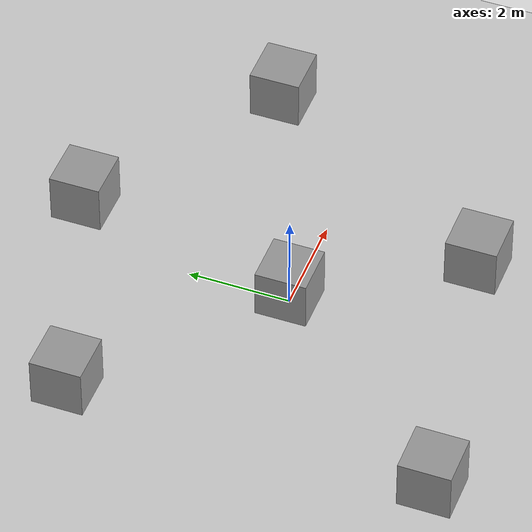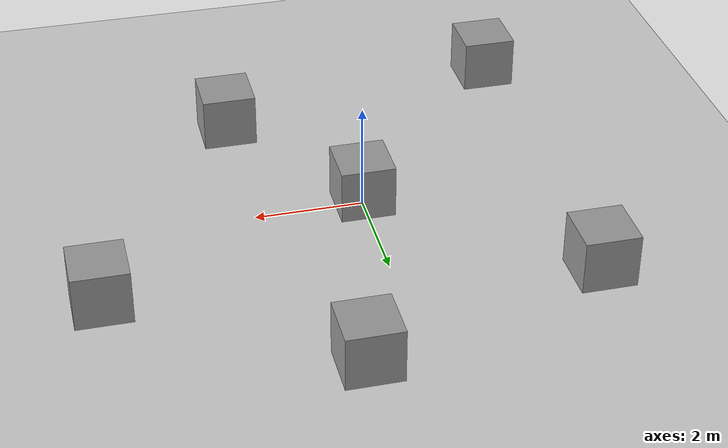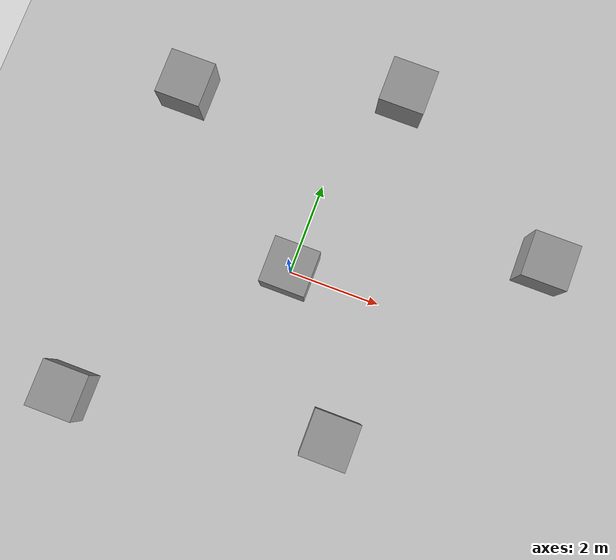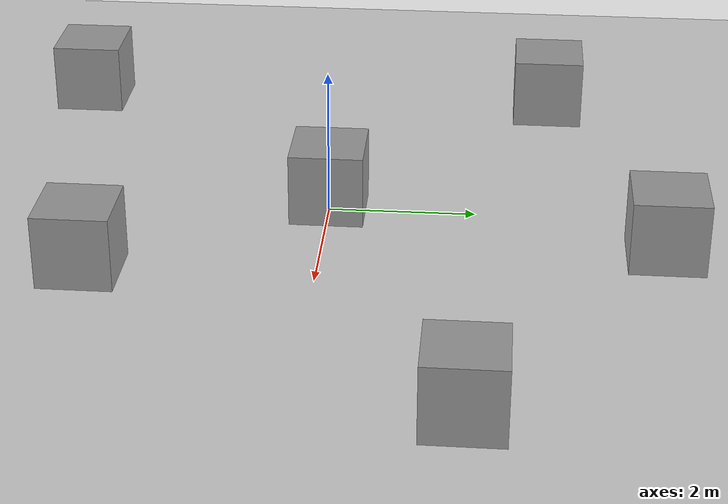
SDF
<sdf version='1.6'>
  <world name='default'>
    <light name='sun' type='directional'>
      <cast_shadows>1</cast_shadows>
      <pose frame=''>0 0 10 0 -0 0</pose>
      <diffuse>0.8 0.8 0.8 1</diffuse>
      <specular>0.2 0.2 0.2 1</specular>
      <attenuation>
        <range>1000</range>
        <constant>0.9</constant>
        <linear>0.01</linear>
        <quadratic>0.001</quadratic>
      </attenuation>
      <direction>-0.5 0.1 -0.9</direction>
    </light>
    <model name='ground_plane'>
      <static>1</static>
      <link name='link'>
        <collision name='collision'>
          <geometry>
            <plane>
              <normal>0 0 1</normal>
              <size>100 100</size>
            </plane>
          </geometry>
          <surface>
            <contact>
              <collide_bitmask>65535</collide_bitmask>
              <ode/>
            </contact>
            <friction>
              <ode>
                <mu>100</mu>
                <mu2>50</mu2>
              </ode>
              <torsional>
                <ode/>
              </torsional>
            </friction>
            <bounce/>
          </surface>
          <max_contacts>10</max_contacts>
        </collision>
        <visual name='visual'>
          <cast_shadows>0</cast_shadows>
          <geometry>
            <plane>
              <normal>0 0 1</normal>
              <size>100 100</size>
            </plane>
          </geometry>
          <material>
            <script>
              <uri>file://media/materials/scripts/gazebo.material</uri>
              <name>Gazebo/Grey</name>
            </script>
          </material>
        </visual>
        <self_collide>0</self_collide>
        <enable_wind>0</enable_wind>
        <kinematic>0</kinematic>
      </link>
    </model>
    <gravity>0 0 -9.8</gravity>
    <magnetic_field>6e-06 2.3e-05 -4.2e-05</magnetic_field>
    <atmosphere type='adiabatic'/>
    <physics name='default_physics' default='0' type='ode'>
      <max_step_size>0.001</max_step_size>
      <real_time_factor>1</real_time_factor>
      <real_time_update_rate>1000</real_time_update_rate>
    </physics>
    <scene>
      <ambient>0.4 0.4 0.4 1</ambient>
      <background>0.7 0.7 0.7 1</background>
      <shadows>1</shadows>
    </scene>
    <audio>
      <device>default</device>
    </audio>
    <wind/>
    <spherical_coordinates>
      <surface_model>EARTH_WGS84</surface_model>
      <latitude_deg>0</latitude_deg>
      <longitude_deg>0</longitude_deg>
      <elevation>0</elevation>
      <heading_deg>0</heading_deg>
    </spherical_coordinates>
    <model name='unit_box'>
      <pose frame=''>0.0 0.0 0.5 0 -0 0</pose>
      <link name='link'>
        <inertial>
          <mass>1</mass>
          <inertia>
            <ixx>0.166667</ixx>
            <ixy>0</ixy>
            <ixz>0</ixz>
            <iyy>0.166667</iyy>
            <iyz>0</iyz>
            <izz>0.166667</izz>
          </inertia>
        </inertial>
        <collision name='collision'>
          <geometry>
            <box>
              <size>1 1 1</size>
            </box>
          </geometry>
          <max_contacts>10</max_contacts>
          <surface>
            <contact>
              <ode/>
            </contact>
            <bounce/>
            <friction>
              <torsional>
                <ode/>
              </torsional>
              <ode/>
            </friction>
          </surface>
        </collision>
        <visual name='visual'>
          <geometry>
            <box>
              <size>1 1 1</size>
            </box>
          </geometry>
          <material>
            <script>
              <name>Gazebo/Grey</name>
              <uri>file://media/materials/scripts/gazebo.material</uri>
            </script>
          </material>
        </visual>
        <self_collide>0</self_collide>
        <enable_wind>0</enable_wind>
        <kinematic>0</kinematic>
      </link>
    </model>
    <model name='unit_box_0'>
      <pose frame=''>-3.5 -4.0 0.5 0 -0 0</pose>
      <link name='link'>
        <inertial>
          <mass>1</mass>
          <inertia>
            <ixx>0.166667</ixx>
            <ixy>0</ixy>
            <ixz>0</ixz>
            <iyy>0.166667</iyy>
            <iyz>0</iyz>
            <izz>0.166667</izz>
          </inertia>
        </inertial>
        <collision name='collision'>
          <geometry>
            <box>
              <size>1 1 1</size>
            </box>
          </geometry>
          <max_contacts>10</max_contacts>
          <surface>
            <contact>
              <ode/>
            </contact>
            <bounce/>
            <friction>
              <torsional>
                <ode/>
              </torsional>
              <ode/>
            </friction>
          </surface>
        </collision>
        <visual name='visual'>
          <geometry>
            <box>
              <size>1 1 1</size>
            </box>
          </geometry>
          <material>
            <script>
              <name>Gazebo/Grey</name>
              <uri>file://media/materials/scripts/gazebo.material</uri>
            </script>
          </material>
        </visual>
        <self_collide>0</self_collide>
        <enable_wind>0</enable_wind>
        <kinematic>0</kinematic>
      </link>
    </model>
    <model name='unit_box_1'>
      <pose frame=''>-3.5 3.0 0.5 0 -0 0</pose>
      <link name='link'>
        <inertial>
          <mass>1</mass>
          <inertia>
            <ixx>0.166667</ixx>
            <ixy>0</ixy>
            <ixz>0</ixz>
            <iyy>0.166667</iyy>
            <iyz>0</iyz>
            <izz>0.166667</izz>
          </inertia>
        </inertial>
        <collision name='collision'>
          <geometry>
            <box>
              <size>1 1 1</size>
            </box>
          </geometry>
          <max_contacts>10</max_contacts>
          <surface>
            <contact>
              <ode/>
            </contact>
            <bounce/>
            <friction>
              <torsional>
                <ode/>
              </torsional>
              <ode/>
            </friction>
          </surface>
        </collision>
        <visual name='visual'>
          <geometry>
            <box>
              <size>1 1 1</size>
            </box>
          </geometry>
          <material>
            <script>
              <name>Gazebo/Grey</name>
              <uri>file://media/materials/scripts/gazebo.material</uri>
            </script>
          </material>
        </visual>
        <self_collide>0</self_collide>
        <enable_wind>0</enable_wind>
        <kinematic>0</kinematic>
      </link>
    </model>
    <model name='unit_box_2'>
      <pose frame=''>2.0 -3.0 0.5 0 -0 0</pose>
      <link name='link'>
        <inertial>
          <mass>1</mass>
          <inertia>
            <ixx>0.166667</ixx>
            <ixy>0</ixy>
            <ixz>0</ixz>
            <iyy>0.166667</iyy>
            <iyz>0</iyz>
            <izz>0.166667</izz>
          </inertia>
        </inertial>
        <collision name='collision'>
          <geometry>
            <box>
              <size>1 1 1</size>
            </box>
          </geometry>
          <max_contacts>10</max_contacts>
          <surface>
            <contact>
              <ode/>
            </contact>
            <bounce/>
            <friction>
              <torsional>
                <ode/>
              </torsional>
              <ode/>
            </friction>
          </surface>
        </collision>
        <visual name='visual'>
          <geometry>
            <box>
              <size>1 1 1</size>
            </box>
          </geometry>
          <material>
            <script>
              <name>Gazebo/Grey</name>
              <uri>file://media/materials/scripts/gazebo.material</uri>
            </script>
          </material>
        </visual>
        <self_collide>0</self_collide>
        <enable_wind>0</enable_wind>
        <kinematic>0</kinematic>
      </link>
    </model>
    <model name='unit_box_3'>
      <pose frame=''>1.0 4.5 0.5 0 -0 0</pose>
      <link name='link'>
        <inertial>
          <mass>1</mass>
          <inertia>
            <ixx>0.166667</ixx>
            <ixy>0</ixy>
            <ixz>0</ixz>
            <iyy>0.166667</iyy>
            <iyz>0</iyz>
            <izz>0.166667</izz>
          </inertia>
        </inertial>
        <collision name='collision'>
          <geometry>
            <box>
              <size>1 1 1</size>
            </box>
          </geometry>
          <max_contacts>10</max_contacts>
          <surface>
            <contact>
              <ode/>
            </contact>
            <bounce/>
            <friction>
              <torsional>
                <ode/>
              </torsional>
              <ode/>
            </friction>
          </surface>
        </collision>
        <visual name='visual'>
          <geometry>
            <box>
              <size>1 1 1</size>
            </box>
          </geometry>
          <material>
            <script>
              <name>Gazebo/Grey</name>
              <uri>file://media/materials/scripts/gazebo.material</uri>
            </script>
          </material>
        </visual>
        <self_collide>0</self_collide>
        <enable_wind>0</enable_wind>
        <kinematic>0</kinematic>
      </link>
    </model>
    <model name='unit_box_4'>
      <pose frame=''>5.0 2.0 0.5 0 -0 0</pose>
      <link name='link'>
        <inertial>
          <mass>1</mass>
          <inertia>
            <ixx>0.166667</ixx>
            <ixy>0</ixy>
            <ixz>0</ixz>
            <iyy>0.166667</iyy>
            <iyz>0</iyz>
            <izz>0.166667</izz>
          </inertia>
        </inertial>
        <collision name='collision'>
          <geometry>
            <box>
              <size>1 1 1</size>
            </box>
          </geometry>
          <max_contacts>10</max_contacts>
          <surface>
            <contact>
              <ode/>
            </contact>
            <bounce/>
            <friction>
              <torsional>
                <ode/>
              </torsional>
              <ode/>
            </friction>
          </surface>
        </collision>
        <visual name='visual'>
          <geometry>
            <box>
              <size>1 1 1</size>
            </box>
          </geometry>
          <material>
            <script>
              <name>Gazebo/Grey</name>
              <uri>file://media/materials/scripts/gazebo.material</uri>
            </script>
          </material>
        </visual>
        <self_collide>0</self_collide>
        <enable_wind>0</enable_wind>
        <kinematic>0</kinematic>
      </link>
    </model>
  </world>
</sdf>
